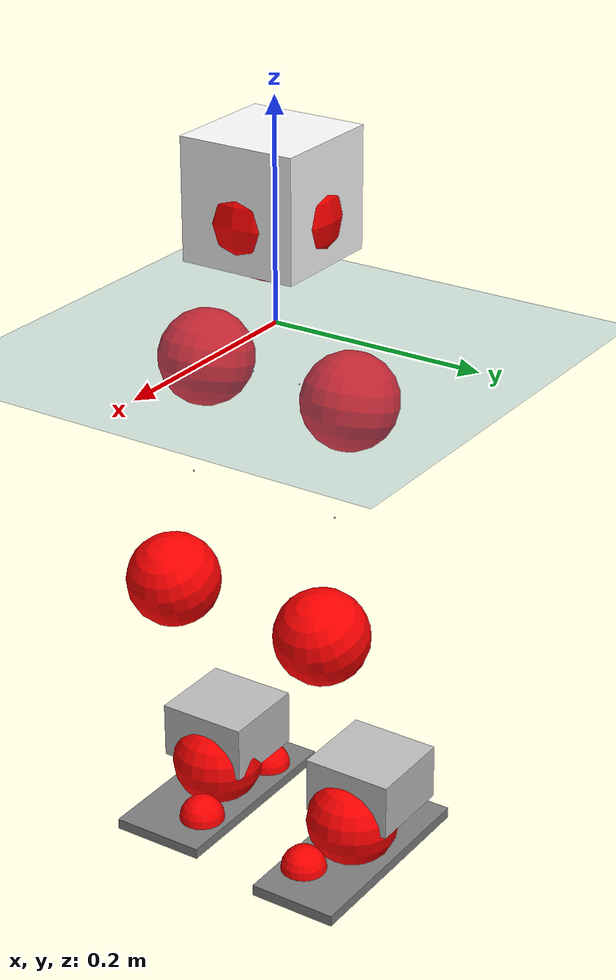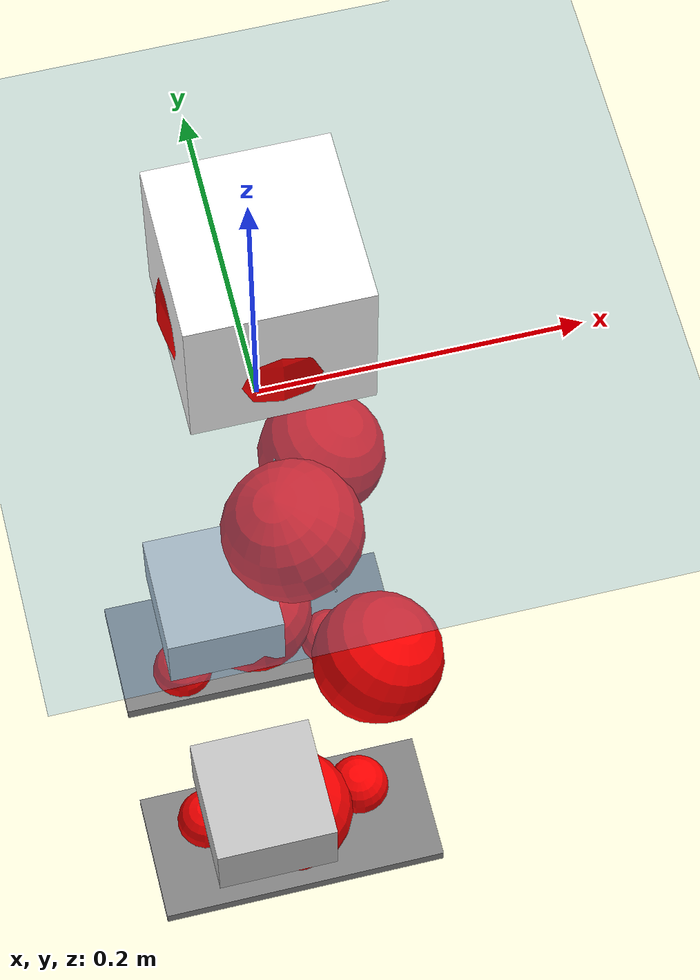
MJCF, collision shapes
<mujoco model="pi_12dof_release_v1">
  <compiler angle="radian" assetdir="assets" balanceinertia="true" inertiafromgeom="false"/>

  <option timestep="0.005" density="1.2" viscosity="2e-05"/>

  <size nkey="1"/>

  <visual>
    <quality shadowsize="8192"/>
    <map shadowclip="0.5"/>
  </visual>

  <default>
    <default class="/">
      <joint armature="0.01" damping="0.01" frictionloss="0.01"/>
      <geom contype="0" conaffinity="0" group="1" solref="-1000 -80"/>
      <site size="0.01 0.005 0.005" group="5"/>
      <general forcelimited="true" biastype="affine" gainprm="20" biasprm="0 -20 -0.5"/>
      <default class="foot">
        <geom size="0.0845 0.036 0.005" type="box" condim="6" group="4" priority="1" friction="0.9 0.2 0.2" solimp="0.015 1 0.005"/>
      </default>
      <default class="reward_collision_sphere">
        <geom group="5" rgba="1 0 0 1"/>
      </default>
    </default>
  </default>

  <asset>
    <texture type="skybox" colorspace="auto" name="//unnamed_texture_0" builtin="gradient" rgb1="0.95 0.95 0.95" rgb2="0.95 0.95 0.95" width="100" height="600"/>
    <texture type="2d" colorspace="auto" name="texplane" builtin="checker" rgb1="0.345 0.575 0.748" rgb2="0.345 0.575 0.748" markrgb="1 1 1" width="512" height="512"/>
    <material name="MatPlane" class="/" texture="texplane" texuniform="true" texrepeat="2 2" specular="0.9"/>
    <mesh name="baselink_1" class="/" file="baselink_1.STL"/>
    <mesh name="r_hip_pitch_link" class="/" file="r_hip_pitch_link.STL"/>
    <mesh name="r_hip_roll_link" class="/" file="r_hip_roll_link.STL"/>
    <mesh name="r_thigh_link" class="/" file="r_thigh_link.STL"/>
    <mesh name="r_calf_link" class="/" file="r_calf_link.STL"/>
    <mesh name="r_ankle_pitch_link" class="/" file="r_ankle_pitch_link.STL"/>
    <mesh name="r_ankle_roll_link" class="/" file="r_ankle_roll_link.STL"/>
    <mesh name="l_hip_pitch_link" class="/" file="l_hip_pitch_link.STL"/>
    <mesh name="l_hip_roll_link" class="/" file="l_hip_roll_link.STL"/>
    <mesh name="l_thigh_link" class="/" file="l_thigh_link.STL"/>
    <mesh name="l_calf_link" class="/" file="l_calf_link.STL"/>
    <mesh name="l_ankle_pitch_link" class="/" file="l_ankle_pitch_link.STL"/>
    <mesh name="l_ankle_roll_link" class="/" file="l_ankle_roll_link.STL"/>
  </asset>

  <worldbody>
    <geom name="floor" class="/" size="100 100 0.125" type="plane" group="0" material="MatPlane"/>
    <light name="toplight_shadow" class="/" pos="0 0 5" dir="0.0990148 0.0990148 -0.990148" type="directional" ambient="0.04 0.04 0.04" diffuse="0.55 0.55 0.55" specular="0.12 0.12 0.12"/>
    <light name="toplight_fill" class="/" pos="0 0 5" dir="0.0990148 0.0990148 -0.990148" type="directional" castshadow="false" ambient="0.04 0.04 0.04" diffuse="0.3 0.3 0.3" specular="0.08 0.08 0.08"/>
    <body name="trunk" pos="0.00473049 0.0010108 -0.00175948" quat="0.999999 3.3208e-05 0.000582779 0.00101822">
      <inertial pos="0.00736495 -0.00388759 0.0595482" quat="0.694734 0.0109655 0.0183956 0.718948" mass="2.84835" diaginertia="0.00353163 0.00713555 0.0290105"/>
      <joint name="//unnamed_joint_0" type="free"/>
      <geom name="//unnamed_geom_1" class="/" type="mesh" density="0" rgba="1 1 1 1" mesh="baselink_1"/>
      <geom name="//unnamed_geom_2" class="/" size="0.054281 0.054281 0.054281" pos="0 0 0.118913" type="box" rgba="1 1 1 1"/>
      <geom name="//unnamed_geom_3" class="reward_collision_sphere" size="0.0597091" pos="0 0 0.104048"/>
      <site name="imu" class="/" pos="0.0012354 0.00968622 -0.0118075" size="0.0108562"/>
      <camera name="track" class="/" pos="0 -1.90074 0" quat="0.707107 0.707107 0 0" mode="trackcom"/>
      <camera name="ego_camera" class="/" pos="0.0615062 0 0.267553" quat="-0.5 -0.5 0.5 0.5"/>
      <body name="r_hip_pitch_link" pos="6.82532e-05 -0.0218725 -0.0470058" quat="0.992296 0.00044122 -0.123872 -0.00216143">
        <inertial pos="0.00637471 -0.0534043 -0.00105618" quat="-0.0237085 0.705407 -0.0289704 0.707814" mass="0.442397" diaginertia="3.75324e-05 7.67447e-05 0.000582257"/>
        <joint name="r_hip_pitch_joint" class="/" pos="0 0 0" axis="0.000749323 -0.999991 -0.00425414" stiffness="0.026711" range="-1.74058 1.29335" armature="0.0109926" damping="0.0267455" frictionloss="0.0102279"/>
        <geom name="//unnamed_geom_4" class="/" type="mesh" density="0" rgba="0.75294 0.75294 0.75294 1" mesh="r_hip_pitch_link"/>
        <geom name="//unnamed_geom_5" class="/" size="0.00054281 0.00054281 0.00054281" type="box" rgba="0.75294 0.75294 0.75294 1"/>
        <body name="r_hip_roll_link" pos="9.89993e-05 -0.0500365 0.00220568" quat="1 -2.74997e-05 3.32311e-05 1.09213e-05">
          <inertial pos="-0.00622848 0.00166156 -0.0939573" quat="0.704177 -0.0822463 -0.0776586 0.700956" mass="0.477573" diaginertia="0.0001203 0.000219963 0.000902366"/>
          <joint name="r_hip_roll_joint" class="/" pos="0 0 0" axis="-0.999996 0.0013586 -0.00237201" range="-0.0694138 0.513003" armature="0.0130451" damping="0.0152425" frictionloss="0.0110856"/>
          <geom name="//unnamed_geom_6" class="/" type="mesh" density="0" rgba="0.75294 0.75294 0.75294 1" mesh="r_hip_roll_link"/>
          <geom name="//unnamed_geom_7" class="/" size="0.00054281 0.00054281 0.00054281" type="box" rgba="0.75294 0.75294 0.75294 1"/>
          <geom name="//unnamed_geom_8" class="reward_collision_sphere" size="0.0434248"/>
          <body name="r_thigh_link" pos="0.00156411 0.0030695 -0.103638" quat="1 2.16648e-05 0.000218305 0.000215655">
            <inertial pos="0.000147116 0.00183025 -0.0690983" quat="0.740904 0.671425 -0.0140599 0.00727697" mass="0.148754" diaginertia="4.52102e-05 7.43423e-05 0.000424453"/>
            <joint name="r_thigh_joint" class="/" pos="0 0 0" axis="0.00649121 0.00838337 -0.999944" stiffness="0.0263712" range="-0.298571 0.585822" armature="0.0125796" damping="0.0151463" frictionloss="0.0102838"/>
            <geom name="//unnamed_geom_9" class="/" type="mesh" density="0" rgba="0.75294 0.75294 0.75294 1" mesh="r_thigh_link"/>
            <geom name="//unnamed_geom_10" class="/" size="0.00054281 0.00054281 0.00054281" type="box" rgba="0.75294 0.75294 0.75294 1"/>
            <body name="r_calf_link" pos="0.00149172 -0.00577414 -0.102427" quat="0.947502 -2.63134e-05 0.31975 0.000437044">
              <inertial pos="-0.00232666 0.00155376 -0.103768" quat="0.999961 -0.0064358 0.00184624 0.00584494" mass="0.943241" diaginertia="0.00125423 0.00259907 0.00125612"/>
              <joint name="r_calf_joint" class="/" pos="0 0 0" axis="-0.00201371 -0.999995 -0.00228156" range="-1.66875 0.711081" armature="0.00744008" damping="0.0262259" frictionloss="0.00780276"/>
              <geom name="//unnamed_geom_11" class="/" type="mesh" density="0" rgba="0.75294 0.75294 0.75294 1" mesh="r_calf_link"/>
              <geom name="//unnamed_geom_12" class="/" size="0.00054281 0.00054281 0.00054281" type="box" rgba="0.75294 0.75294 0.75294 1"/>
              <geom name="//unnamed_geom_13" class="reward_collision_sphere" size="0.0434248"/>
              <body name="r_ankle_pitch_link" pos="0.00277864 -0.00200317 -0.211527" quat="0.979693 0.000908516 -0.200502 0.000639823">
                <inertial pos="0.0051157 0.00881517 -0.00245397" quat="0.00433772 0.699625 -0.00279228 0.714492" mass="0.235299" diaginertia="0.000110438 0.000164772 0.000872056"/>
                <joint name="r_ankle_pitch_joint" class="/" pos="0 0 0" axis="-0.0120222 -0.999637 0.0240914" stiffness="0.0232435" range="-1.25133 0.463559" armature="0.00962418" damping="0.00500908" frictionloss="0.0112882"/>
                <geom name="//unnamed_geom_14" class="/" type="mesh" density="0" rgba="0.75294 0.75294 0.75294 1" mesh="r_ankle_pitch_link"/>
                <geom name="//unnamed_geom_15" class="/" size="0.0423392 0.0434248 0.0271405" type="box" rgba="0.75294 0.75294 0.75294 1"/>
                <body name="r_ankle_roll_link" pos="0.060965 0.0025278 0.00132541" quat="1 0.000142681 -6.42083e-05 0.000128329">
                  <inertial pos="-0.0187783 0.000351553 -0.0238183" quat="0.553771 0.438693 0.43717 0.556569" mass="0.661801" diaginertia="0.000391617 0.000786566 0.00200889"/>
                  <joint name="r_ankle_roll_joint" class="/" pos="0 0 0" axis="-0.999444 0.0332584 0.00251684" stiffness="0.00476189" range="-0.181907 0.204845" armature="0.012253" damping="0.00878491" frictionloss="0.0107339"/>
                  <geom name="//unnamed_geom_16" class="/" type="mesh" density="0" rgba="0.75294 0.75294 0.75294 1" mesh="r_ankle_roll_link"/>
                  <geom name="//unnamed_geom_17" class="/" type="mesh" rgba="0.75294 0.75294 0.75294 1" mesh="r_ankle_roll_link"/>
                  <geom name="right_foot" class="foot" size="0.1006 0.0455943 0.00512061" pos="-0.0418242 0 -0.0654019"/>
                  <geom name="//unnamed_geom_19" class="reward_collision_sphere" size="0.0434248" pos="-0.0410041 0 -0.0297281"/>
                  <geom name="//unnamed_geom_20" class="reward_collision_sphere" size="0.0217124" pos="0.0123012 0.0190074 -0.0594563"/>
                  <geom name="//unnamed_geom_21" class="reward_collision_sphere" size="0.0217124" pos="-0.0984099 0.0190074 -0.0594563"/>
                  <site name="right_foot" class="foot" pos="-0.0418242 0 -0.0654019" size="0.0108562"/>
                </body>
              </body>
            </body>
          </body>
        </body>
      </body>
      <body name="l_hip_pitch_link" pos="-0.00252923 0.0247533 -0.0492327" quat="0.992342 -0.0012556 -0.123483 -0.00277502">
        <inertial pos="-0.0040352 0.048633 0.000561834" quat="-0.03872 0.705732 0.0293376 0.706811" mass="0.519264" diaginertia="4.81962e-05 8.09134e-05 0.000716384"/>
        <joint name="l_hip_pitch_joint" class="/" pos="0 0 0" axis="0.00574383 0.999928 0.0105253" range="-1.24248 1.75855" armature="0.00989057" damping="0.014259" frictionloss="0.0116958"/>
        <geom name="//unnamed_geom_22" class="/" type="mesh" density="0" rgba="0.75294 0.75294 0.75294 1" mesh="l_hip_pitch_link"/>
        <geom name="//unnamed_geom_23" class="/" size="0.00054281 0.00054281 0.00054281" type="box" rgba="0.75294 0.75294 0.75294 1"/>
        <body name="l_hip_roll_link" pos="0.00407606 0.0547526 -0.00174587" quat="0.999998 0.00133517 0.000622375 -0.00156168">
          <inertial pos="-0.00178808 -0.0015629 -0.0932091" quat="0.706964 -0.0727488 -0.089043 0.69784" mass="0.514768" diaginertia="0.00012738 0.000220917 0.000958491"/>
          <joint name="l_hip_roll_joint" class="/" pos="0 0 0" axis="-0.999986 0.00363746 -0.00391753" range="-0.546239 0.079672" armature="0.00985488" damping="0.035054" frictionloss="0.0113734"/>
          <geom name="//unnamed_geom_24" class="/" type="mesh" density="0" rgba="0.75294 0.75294 0.75294 1" mesh="l_hip_roll_link"/>
          <geom name="//unnamed_geom_25" class="/" size="0.00054281 0.00054281 0.00054281" type="box" rgba="0.75294 0.75294 0.75294 1"/>
          <geom name="//unnamed_geom_26" class="reward_collision_sphere" size="0.0434248"/>
          <body name="l_thigh_link" pos="0.00155667 0.00199305 -0.102492" quat="1 -1.84524e-05 0.000514829 0.000170355">
            <inertial pos="-8.73336e-05 -0.00183002 -0.0703803" quat="0.674294 0.73846 -0.00197852 0.000278722" mass="0.143238" diaginertia="4.6409e-05 7.31949e-05 0.000411228"/>
            <joint name="l_thigh_joint" class="/" pos="0 0 0" axis="0.00161759 0.0114456 -0.999933" range="-0.604657 0.248552" armature="0.0105509" damping="0.00339466" frictionloss="0.00969214"/>
            <geom name="//unnamed_geom_27" class="/" type="mesh" density="0" rgba="0.75294 0.75294 0.75294 1" mesh="l_thigh_link"/>
            <geom name="//unnamed_geom_28" class="/" size="0.00054281 0.00054281 0.00054281" type="box" rgba="0.75294 0.75294 0.75294 1"/>
            <body name="l_calf_link" pos="-0.000359795 0.00410938 -0.106958" quat="0.947814 -0.000185564 0.318823 0.000240201">
              <inertial pos="0.000274292 0.00148115 -0.103933" quat="0.999821 -0.0130391 0.00646507 0.0120814" mass="1.04735" diaginertia="0.00131116 0.00270656 0.00124101"/>
              <joint name="l_calf_joint" class="/" pos="0 0 0" axis="-0.00617369 0.999893 0.0132272" range="-0.697519 1.69625" armature="0.013576" damping="0.00130224" frictionloss="0.00818715"/>
              <geom name="//unnamed_geom_29" class="/" type="mesh" density="0" rgba="0.75294 0.75294 0.75294 1" mesh="l_calf_link"/>
              <geom name="//unnamed_geom_30" class="/" size="0.00054281 0.00054281 0.00054281" type="box" rgba="0.75294 0.75294 0.75294 1"/>
              <geom name="//unnamed_geom_31" class="reward_collision_sphere" size="0.0434248"/>
              <body name="l_ankle_pitch_link" pos="0.000774394 0.00177251 -0.205778" quat="0.979969 0.000214871 -0.199152 -0.000407594">
                <inertial pos="0.00371958 -0.00174666 0.000376309" quat="-0.00431509 0.707239 -0.00117315 0.70696" mass="0.216862" diaginertia="0.00010923 0.000169482 0.000888895"/>
                <joint name="l_ankle_pitch_joint" class="/" pos="0 0 0" axis="-0.00979336 0.999925 -0.00739026" range="-0.562153 1.31375" armature="0.0107056" damping="0.00364609" frictionloss="0.011673"/>
                <geom name="//unnamed_geom_32" class="/" type="mesh" density="0" rgba="0.75294 0.75294 0.75294 1" mesh="l_ankle_pitch_link"/>
                <geom name="//unnamed_geom_33" class="/" size="0.0423392 0.0434248 0.0271405" type="box" rgba="0.75294 0.75294 0.75294 1"/>
                <body name="l_ankle_roll_link" pos="0.0683895 -0.00197879 -0.00120489" quat="0.999999 0.00106588 0.000777227 0.00013129">
                  <inertial pos="-0.0255247 -0.00032158 -0.0209847" quat="0.564551 0.432712 0.427 0.558313" mass="0.656584" diaginertia="0.000449094 0.000864098 0.00216795"/>
                  <joint name="l_ankle_roll_joint" class="/" pos="0 0 0" axis="-0.999941 -0.000883014 0.0108243" range="-0.204129 0.158173" armature="0.0115153" damping="0.0107039" frictionloss="0.0121677"/>
                  <geom name="//unnamed_geom_34" class="/" type="mesh" density="0" rgba="0.75294 0.75294 0.75294 1" mesh="l_ankle_roll_link"/>
                  <geom name="//unnamed_geom_35" class="/" type="mesh" rgba="0.75294 0.75294 0.75294 1" mesh="l_ankle_roll_link"/>
                  <geom name="left_foot" class="foot" size="0.102524 0.0426666 0.00534508" pos="-0.0418242 0 -0.0654019"/>
                  <geom name="//unnamed_geom_37" class="reward_collision_sphere" size="0.0434248" pos="-0.0410041 0 -0.0297281"/>
                  <geom name="//unnamed_geom_38" class="reward_collision_sphere" size="0.0217124" pos="0.0123012 -0.0190074 -0.0594563"/>
                  <geom name="//unnamed_geom_39" class="reward_collision_sphere" size="0.0217124" pos="-0.0984099 -0.0190074 -0.0594563"/>
                  <site name="left_foot" class="foot" pos="-0.0418242 0 -0.0654019" size="0.0108562"/>
                </body>
              </body>
            </body>
          </body>
        </body>
      </body>
    </body>
  </worldbody>

  <contact>
    <pair class="/" geom1="floor" geom2="right_foot" name="//unnamed_contact_1"/>
    <pair class="/" geom1="floor" geom2="left_foot" name="//unnamed_contact_0"/>
  </contact>

  <actuator>
    <general name="r_hip_pitch_joint" class="/" joint="r_hip_pitch_joint" forcerange="-20.8079 20.8079" gainprm="22.9493" biasprm="0 -22.9493 -0.537835"/>
    <general name="r_hip_roll_joint" class="/" joint="r_hip_roll_joint" forcerange="-23.0972 23.0972" gainprm="22.9493" biasprm="0 -22.9493 -0.537835"/>
    <general name="r_thigh_joint" class="/" joint="r_thigh_joint" forcerange="-23.4652 23.4652" gainprm="22.9493" biasprm="0 -22.9493 -0.537835"/>
    <general name="r_calf_joint" class="/" joint="r_calf_joint" forcerange="-20.7215 20.7215" gainprm="22.9493" biasprm="0 -22.9493 -0.537835"/>
    <general name="r_ankle_pitch_joint" class="/" joint="r_ankle_pitch_joint" forcerange="-24.8684 24.8684" gainprm="22.9493" biasprm="0 -22.9493 -0.537835"/>
    <general name="r_ankle_roll_joint" class="/" joint="r_ankle_roll_joint" forcerange="-20.6711 20.6711" gainprm="22.9493" biasprm="0 -22.9493 -0.537835"/>
    <general name="l_hip_pitch_joint" class="/" joint="l_hip_pitch_joint" forcerange="-22.1177 22.1177" gainprm="22.9493" biasprm="0 -22.9493 -0.537835"/>
    <general name="l_hip_roll_joint" class="/" joint="l_hip_roll_joint" forcerange="-22.1917 22.1917" gainprm="22.9493" biasprm="0 -22.9493 -0.537835"/>
    <general name="l_thigh_joint" class="/" joint="l_thigh_joint" forcerange="-23.0378 23.0378" gainprm="22.9493" biasprm="0 -22.9493 -0.537835"/>
    <general name="l_calf_joint" class="/" joint="l_calf_joint" forcerange="-17.9266 17.9266" gainprm="22.9493" biasprm="0 -22.9493 -0.537835"/>
    <general name="l_ankle_pitch_joint" class="/" joint="l_ankle_pitch_joint" forcerange="-22.8273 22.8273" gainprm="22.9493" biasprm="0 -22.9493 -0.537835"/>
    <general name="l_ankle_roll_joint" class="/" joint="l_ankle_roll_joint" forcerange="-24.1156 24.1156" gainprm="22.9493" biasprm="0 -22.9493 -0.537835"/>
  </actuator>

  <sensor>
    <gyro site="imu" name="imu_angular_velocity"/>
    <velocimeter site="imu" name="imu_linear_velocity"/>
    <framelinvel objtype="site" objname="left_foot" name="left_foot_global_linear_velocity"/>
    <framelinvel objtype="site" objname="right_foot" name="right_foot_global_linear_velocity"/>
  </sensor>

  <keyframe>
    <key name="home" qpos="0 0 0.291 1 0 0 0 0.4 0 0 -0.8 0.4 0 -0.4 0 0 0.8 -0.4 0"/>
  </keyframe>
</mujoco>
